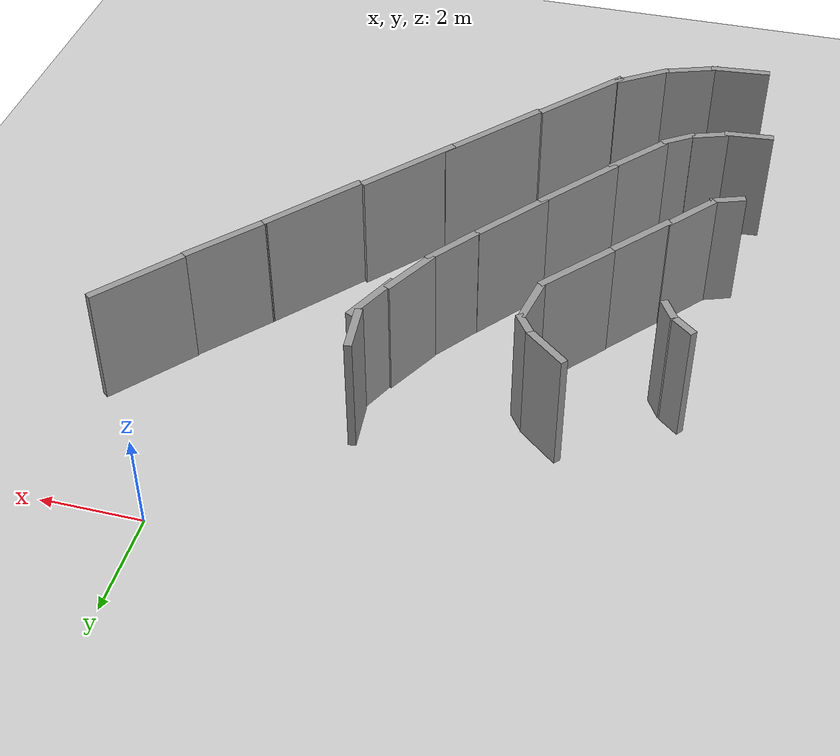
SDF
<sdf version="1.6">
 <world name="default">
  <model name="ground_plane">
   <static>1</static>
   <link name="link">
    <collision name="collision">
     <geometry><plane><normal>0 0 1</normal><size>100 100</size></plane></geometry>
     <surface><friction><ode><mu>100</mu><mu2>50</mu2></ode></friction></surface>
    </collision>
    <visual name="visual">
     <cast_shadows>0</cast_shadows>
     <geometry><plane><normal>0 0 1</normal><size>100 100</size></plane></geometry>
     <material>
      <script><uri>file://media/materials/scripts/gazebo.material</uri><name>Gazebo/Grey</name></script>
     </material>
    </visual>
   </link>
  </model>
  <model name="c-Snail_v3_clone">
   <link name="Wall_14">
    <pose>-5.26527 -5.8787 0 0 0 -0.010393</pose>
    <visual name="Wall_14_Visual">
     <pose>0 0 1.25 0 -0 0</pose>
     <geometry><box><size>2 0.15 2.5</size></box></geometry>
     <material>
      <script><uri>file://media/materials/scripts/gazebo.material</uri><name>Gazebo/Grey</name></script>
      <ambient>1 1 1 1</ambient>
     </material>
     <meta><layer>0</layer></meta>
    </visual>
    <collision name="Wall_14_Collision">
     <pose>0 0 1.25 0 -0 0</pose>
     <geometry><box><size>2 0.15 2.5</size></box></geometry>
     <surface>
      <friction>
       <ode><mu>1</mu><mu2>1</mu2><fdir1>0 0 0</fdir1><slip1>0</slip1><slip2>0</slip2></ode>
       <torsional>
        <coefficient>1</coefficient>
        <patch_radius>0</patch_radius>
        <surface_radius>0</surface_radius>
        <use_patch_radius>1</use_patch_radius>
        <ode><slip>0</slip></ode>
       </torsional>
      </friction>
      <bounce><restitution_coefficient>0</restitution_coefficient><threshold>1e+06</threshold></bounce>
      <contact>
       <collide_without_contact>0</collide_without_contact>
       <collide_without_contact_bitmask>1</collide_without_contact_bitmask>
       <collide_bitmask>1</collide_bitmask>
       <ode>
        <soft_cfm>0</soft_cfm>
        <soft_erp>0.2</soft_erp>
        <kp>1e+13</kp>
        <kd>1</kd>
        <max_vel>0.01</max_vel>
        <min_depth>0</min_depth>
       </ode>
       <bullet>
        <split_impulse>1</split_impulse>
        <split_impulse_penetration_threshold>-0.01</split_impulse_penetration_threshold>
        <soft_cfm>0</soft_cfm>
        <soft_erp>0.2</soft_erp>
        <kp>1e+13</kp>
        <kd>1</kd>
       </bullet>
      </contact>
     </surface>
    </collision>
   </link>
   <link name="Wall_15">
    <pose>-3.40013 -5.89719 0 0 -0 0.01305</pose>
    <visual name="Wall_15_Visual">
     <pose>0 0 1.25 0 -0 0</pose>
     <geometry><box><size>1.77919 0.15 2.5</size></box></geometry>
     <material>
      <script><uri>file://media/materials/scripts/gazebo.material</uri><name>Gazebo/Grey</name></script>
      <ambient>1 1 1 1</ambient>
     </material>
     <meta><layer>0</layer></meta>
    </visual>
    <collision name="Wall_15_Collision">
     <pose>0 0 1.25 0 -0 0</pose>
     <geometry><box><size>1.77919 0.15 2.5</size></box></geometry>
     <surface>
      <friction>
       <ode><mu>1</mu><mu2>1</mu2><fdir1>0 0 0</fdir1><slip1>0</slip1><slip2>0</slip2></ode>
       <torsional>
        <coefficient>1</coefficient>
        <patch_radius>0</patch_radius>
        <surface_radius>0</surface_radius>
        <use_patch_radius>1</use_patch_radius>
        <ode><slip>0</slip></ode>
       </torsional>
      </friction>
      <bounce><restitution_coefficient>0</restitution_coefficient><threshold>1e+06</threshold></bounce>
      <contact>
       <collide_without_contact>0</collide_without_contact>
       <collide_without_contact_bitmask>1</collide_without_contact_bitmask>
       <collide_bitmask>1</collide_bitmask>
       <ode>
        <soft_cfm>0</soft_cfm>
        <soft_erp>0.2</soft_erp>
        <kp>1e+13</kp>
        <kd>1</kd>
        <max_vel>0.01</max_vel>
        <min_depth>0</min_depth>
       </ode>
       <bullet>
        <split_impulse>1</split_impulse>
        <split_impulse_penetration_threshold>-0.01</split_impulse_penetration_threshold>
        <soft_cfm>0</soft_cfm>
        <soft_erp>0.2</soft_erp>
        <kp>1e+13</kp>
        <kd>1</kd>
       </bullet>
      </contact>
     </surface>
    </collision>
   </link>
   <link name="Wall_18">
    <pose>-1.42808 -5.88586 0 0 -0 0</pose>
    <visual name="Wall_18_Visual">
     <pose>0 0 1.25 0 -0 0</pose>
     <geometry><box><size>2.25 0.15 2.5</size></box></geometry>
     <material>
      <script><uri>file://media/materials/scripts/gazebo.material</uri><name>Gazebo/Grey</name></script>
      <ambient>1 1 1 1</ambient>
     </material>
     <meta><layer>0</layer></meta>
    </visual>
    <collision name="Wall_18_Collision">
     <pose>0 0 1.25 0 -0 0</pose>
     <geometry><box><size>2.25 0.15 2.5</size></box></geometry>
     <surface>
      <friction>
       <ode><mu>1</mu><mu2>1</mu2><fdir1>0 0 0</fdir1><slip1>0</slip1><slip2>0</slip2></ode>
       <torsional>
        <coefficient>1</coefficient>
        <patch_radius>0</patch_radius>
        <surface_radius>0</surface_radius>
        <use_patch_radius>1</use_patch_radius>
        <ode><slip>0</slip></ode>
       </torsional>
      </friction>
      <bounce><restitution_coefficient>0</restitution_coefficient><threshold>1e+06</threshold></bounce>
      <contact>
       <collide_without_contact>0</collide_without_contact>
       <collide_without_contact_bitmask>1</collide_without_contact_bitmask>
       <collide_bitmask>1</collide_bitmask>
       <ode>
        <soft_cfm>0</soft_cfm>
        <soft_erp>0.2</soft_erp>
        <kp>1e+13</kp>
        <kd>1</kd>
        <max_vel>0.01</max_vel>
        <min_depth>0</min_depth>
       </ode>
       <bullet>
        <split_impulse>1</split_impulse>
        <split_impulse_penetration_threshold>-0.01</split_impulse_penetration_threshold>
        <soft_cfm>0</soft_cfm>
        <soft_erp>0.2</soft_erp>
        <kp>1e+13</kp>
        <kd>1</kd>
       </bullet>
      </contact>
     </surface>
    </collision>
   </link>
   <link name="Wall_19">
    <pose>0.800174 -5.81597 0 0 -0 0</pose>
    <visual name="Wall_19_Visual">
     <pose>0 0 1.25 0 -0 0</pose>
     <geometry><box><size>2.25 0.15 2.5</size></box></geometry>
     <material>
      <script><uri>file://media/materials/scripts/gazebo.material</uri><name>Gazebo/Grey</name></script>
      <ambient>1 1 1 1</ambient>
     </material>
     <meta><layer>0</layer></meta>
    </visual>
    <collision name="Wall_19_Collision">
     <pose>0 0 1.25 0 -0 0</pose>
     <geometry><box><size>2.25 0.15 2.5</size></box></geometry>
     <surface>
      <friction>
       <ode><mu>1</mu><mu2>1</mu2><fdir1>0 0 0</fdir1><slip1>0</slip1><slip2>0</slip2></ode>
       <torsional>
        <coefficient>1</coefficient>
        <patch_radius>0</patch_radius>
        <surface_radius>0</surface_radius>
        <use_patch_radius>1</use_patch_radius>
        <ode><slip>0</slip></ode>
       </torsional>
      </friction>
      <bounce><restitution_coefficient>0</restitution_coefficient><threshold>1e+06</threshold></bounce>
      <contact>
       <collide_without_contact>0</collide_without_contact>
       <collide_without_contact_bitmask>1</collide_without_contact_bitmask>
       <collide_bitmask>1</collide_bitmask>
       <ode>
        <soft_cfm>0</soft_cfm>
        <soft_erp>0.2</soft_erp>
        <kp>1e+13</kp>
        <kd>1</kd>
        <max_vel>0.01</max_vel>
        <min_depth>0</min_depth>
       </ode>
       <bullet>
        <split_impulse>1</split_impulse>
        <split_impulse_penetration_threshold>-0.01</split_impulse_penetration_threshold>
        <soft_cfm>0</soft_cfm>
        <soft_erp>0.2</soft_erp>
        <kp>1e+13</kp>
        <kd>1</kd>
       </bullet>
      </contact>
     </surface>
    </collision>
   </link>
   <link name="Wall_20">
    <pose>2.90214 -5.80096 0 0 -0 0</pose>
    <visual name="Wall_20_Visual">
     <pose>0 0 1.25 0 -0 0</pose>
     <geometry><box><size>2.5 0.15 2.5</size></box></geometry>
     <material>
      <script><uri>file://media/materials/scripts/gazebo.material</uri><name>Gazebo/Grey</name></script>
      <ambient>1 1 1 1</ambient>
     </material>
     <meta><layer>0</layer></meta>
    </visual>
    <collision name="Wall_20_Collision">
     <pose>0 0 1.25 0 -0 0</pose>
     <geometry><box><size>2.5 0.15 2.5</size></box></geometry>
     <surface>
      <friction>
       <ode><mu>1</mu><mu2>1</mu2><fdir1>0 0 0</fdir1><slip1>0</slip1><slip2>0</slip2></ode>
       <torsional>
        <coefficient>1</coefficient>
        <patch_radius>0</patch_radius>
        <surface_radius>0</surface_radius>
        <use_patch_radius>1</use_patch_radius>
        <ode><slip>0</slip></ode>
       </torsional>
      </friction>
      <bounce><restitution_coefficient>0</restitution_coefficient><threshold>1e+06</threshold></bounce>
      <contact>
       <collide_without_contact>0</collide_without_contact>
       <collide_without_contact_bitmask>1</collide_without_contact_bitmask>
       <collide_bitmask>1</collide_bitmask>
       <ode>
        <soft_cfm>0</soft_cfm>
        <soft_erp>0.2</soft_erp>
        <kp>1e+13</kp>
        <kd>1</kd>
        <max_vel>0.01</max_vel>
        <min_depth>0</min_depth>
       </ode>
       <bullet>
        <split_impulse>1</split_impulse>
        <split_impulse_penetration_threshold>-0.01</split_impulse_penetration_threshold>
        <soft_cfm>0</soft_cfm>
        <soft_erp>0.2</soft_erp>
        <kp>1e+13</kp>
        <kd>1</kd>
       </bullet>
      </contact>
     </surface>
    </collision>
   </link>
   <link name="Wall_21">
    <pose>5.25228 -5.75509 0 0 -0 0</pose>
    <visual name="Wall_21_Visual">
     <pose>0 0 1.25 0 -0 0</pose>
     <geometry><box><size>2.25 0.15 2.5</size></box></geometry>
     <material>
      <script><uri>file://media/materials/scripts/gazebo.material</uri><name>Gazebo/Grey</name></script>
      <ambient>1 1 1 1</ambient>
     </material>
     <meta><layer>0</layer></meta>
    </visual>
    <collision name="Wall_21_Collision">
     <pose>0 0 1.25 0 -0 0</pose>
     <geometry><box><size>2.25 0.15 2.5</size></box></geometry>
     <surface>
      <friction>
       <ode><mu>1</mu><mu2>1</mu2><fdir1>0 0 0</fdir1><slip1>0</slip1><slip2>0</slip2></ode>
       <torsional>
        <coefficient>1</coefficient>
        <patch_radius>0</patch_radius>
        <surface_radius>0</surface_radius>
        <use_patch_radius>1</use_patch_radius>
        <ode><slip>0</slip></ode>
       </torsional>
      </friction>
      <bounce><restitution_coefficient>0</restitution_coefficient><threshold>1e+06</threshold></bounce>
      <contact>
       <collide_without_contact>0</collide_without_contact>
       <collide_without_contact_bitmask>1</collide_without_contact_bitmask>
       <collide_bitmask>1</collide_bitmask>
       <ode>
        <soft_cfm>0</soft_cfm>
        <soft_erp>0.2</soft_erp>
        <kp>1e+13</kp>
        <kd>1</kd>
        <max_vel>0.01</max_vel>
        <min_depth>0</min_depth>
       </ode>
       <bullet>
        <split_impulse>1</split_impulse>
        <split_impulse_penetration_threshold>-0.01</split_impulse_penetration_threshold>
        <soft_cfm>0</soft_cfm>
        <soft_erp>0.2</soft_erp>
        <kp>1e+13</kp>
        <kd>1</kd>
       </bullet>
      </contact>
     </surface>
    </collision>
   </link>
   <link name="Wall_22">
    <pose>6.78859 -5.56286 0 0 -0 0.261799</pose>
    <visual name="Wall_22_Visual">
     <pose>0 0 1.25 0 -0 0</pose>
     <geometry><box><size>1.25 0.15 2.5</size></box></geometry>
     <material>
      <script><uri>file://media/materials/scripts/gazebo.material</uri><name>Gazebo/Grey</name></script>
      <ambient>1 1 1 1</ambient>
     </material>
     <meta><layer>0</layer></meta>
    </visual>
    <collision name="Wall_22_Collision">
     <pose>0 0 1.25 0 -0 0</pose>
     <geometry><box><size>1.25 0.15 2.5</size></box></geometry>
     <surface>
      <friction>
       <ode><mu>1</mu><mu2>1</mu2><fdir1>0 0 0</fdir1><slip1>0</slip1><slip2>0</slip2></ode>
       <torsional>
        <coefficient>1</coefficient>
        <patch_radius>0</patch_radius>
        <surface_radius>0</surface_radius>
        <use_patch_radius>1</use_patch_radius>
        <ode><slip>0</slip></ode>
       </torsional>
      </friction>
      <bounce><restitution_coefficient>0</restitution_coefficient><threshold>1e+06</threshold></bounce>
      <contact>
       <collide_without_contact>0</collide_without_contact>
       <collide_without_contact_bitmask>1</collide_without_contact_bitmask>
       <collide_bitmask>1</collide_bitmask>
       <ode>
        <soft_cfm>0</soft_cfm>
        <soft_erp>0.2</soft_erp>
        <kp>1e+13</kp>
        <kd>1</kd>
        <max_vel>0.01</max_vel>
        <min_depth>0</min_depth>
       </ode>
       <bullet>
        <split_impulse>1</split_impulse>
        <split_impulse_penetration_threshold>-0.01</split_impulse_penetration_threshold>
        <soft_cfm>0</soft_cfm>
        <soft_erp>0.2</soft_erp>
        <kp>1e+13</kp>
        <kd>1</kd>
       </bullet>
      </contact>
     </surface>
    </collision>
   </link>
   <link name="Wall_23">
    <pose>7.79617 -5.14551 0 0 -0 0.523599</pose>
    <visual name="Wall_23_Visual">
     <pose>0 0 1.25 0 -0 0</pose>
     <geometry><box><size>1.25 0.15 2.5</size></box></geometry>
     <material>
      <script><uri>file://media/materials/scripts/gazebo.material</uri><name>Gazebo/Grey</name></script>
      <ambient>1 1 1 1</ambient>
     </material>
     <meta><layer>0</layer></meta>
    </visual>
    <collision name="Wall_23_Collision">
     <pose>0 0 1.25 0 -0 0</pose>
     <geometry><box><size>1.25 0.15 2.5</size></box></geometry>
     <surface>
      <friction>
       <ode><mu>1</mu><mu2>1</mu2><fdir1>0 0 0</fdir1><slip1>0</slip1><slip2>0</slip2></ode>
       <torsional>
        <coefficient>1</coefficient>
        <patch_radius>0</patch_radius>
        <surface_radius>0</surface_radius>
        <use_patch_radius>1</use_patch_radius>
        <ode><slip>0</slip></ode>
       </torsional>
      </friction>
      <bounce><restitution_coefficient>0</restitution_coefficient><threshold>1e+06</threshold></bounce>
      <contact>
       <collide_without_contact>0</collide_without_contact>
       <collide_without_contact_bitmask>1</collide_without_contact_bitmask>
       <collide_bitmask>1</collide_bitmask>
       <ode>
        <soft_cfm>0</soft_cfm>
        <soft_erp>0.2</soft_erp>
        <kp>1e+13</kp>
        <kd>1</kd>
        <max_vel>0.01</max_vel>
        <min_depth>0</min_depth>
       </ode>
       <bullet>
        <split_impulse>1</split_impulse>
        <split_impulse_penetration_threshold>-0.01</split_impulse_penetration_threshold>
        <soft_cfm>0</soft_cfm>
        <soft_erp>0.2</soft_erp>
        <kp>1e+13</kp>
        <kd>1</kd>
       </bullet>
      </contact>
     </surface>
    </collision>
   </link>
   <link name="Wall_24">
    <pose>8.66139 -4.4816 0 0 -0 0.785398</pose>
    <visual name="Wall_24_Visual">
     <pose>0 0 1.25 0 -0 0</pose>
     <geometry><box><size>1.25 0.15 2.5</size></box></geometry>
     <material>
      <script><uri>file://media/materials/scripts/gazebo.material</uri><name>Gazebo/Grey</name></script>
      <ambient>1 1 1 1</ambient>
     </material>
     <meta><layer>0</layer></meta>
    </visual>
    <collision name="Wall_24_Collision">
     <pose>0 0 1.25 0 -0 0</pose>
     <geometry><box><size>1.25 0.15 2.5</size></box></geometry>
     <surface>
      <friction>
       <ode><mu>1</mu><mu2>1</mu2><fdir1>0 0 0</fdir1><slip1>0</slip1><slip2>0</slip2></ode>
       <torsional>
        <coefficient>1</coefficient>
        <patch_radius>0</patch_radius>
        <surface_radius>0</surface_radius>
        <use_patch_radius>1</use_patch_radius>
        <ode><slip>0</slip></ode>
       </torsional>
      </friction>
      <bounce><restitution_coefficient>0</restitution_coefficient><threshold>1e+06</threshold></bounce>
      <contact>
       <collide_without_contact>0</collide_without_contact>
       <collide_without_contact_bitmask>1</collide_without_contact_bitmask>
       <collide_bitmask>1</collide_bitmask>
       <ode>
        <soft_cfm>0</soft_cfm>
        <soft_erp>0.2</soft_erp>
        <kp>1e+13</kp>
        <kd>1</kd>
        <max_vel>0.01</max_vel>
        <min_depth>0</min_depth>
       </ode>
       <bullet>
        <split_impulse>1</split_impulse>
        <split_impulse_penetration_threshold>-0.01</split_impulse_penetration_threshold>
        <soft_cfm>0</soft_cfm>
        <soft_erp>0.2</soft_erp>
        <kp>1e+13</kp>
        <kd>1</kd>
       </bullet>
      </contact>
     </surface>
    </collision>
   </link>
   <link name="Wall_43">
    <pose>-2.78966 -2.37241 0 0 0 -0.785398</pose>
    <visual name="Wall_43_Visual">
     <pose>0 0 1.25 0 -0 0</pose>
     <geometry><box><size>1 0.15 2.5</size></box></geometry>
     <material>
      <script><uri>file://media/materials/scripts/gazebo.material</uri><name>Gazebo/Grey</name></script>
      <ambient>1 1 1 1</ambient>
     </material>
     <meta><layer>0</layer></meta>
    </visual>
    <collision name="Wall_43_Collision">
     <pose>0 0 1.25 0 -0 0</pose>
     <geometry><box><size>1 0.15 2.5</size></box></geometry>
     <surface>
      <friction>
       <ode><mu>1</mu><mu2>1</mu2><fdir1>0 0 0</fdir1><slip1>0</slip1><slip2>0</slip2></ode>
       <torsional>
        <coefficient>1</coefficient>
        <patch_radius>0</patch_radius>
        <surface_radius>0</surface_radius>
        <use_patch_radius>1</use_patch_radius>
        <ode><slip>0</slip></ode>
       </torsional>
      </friction>
      <bounce><restitution_coefficient>0</restitution_coefficient><threshold>1e+06</threshold></bounce>
      <contact>
       <collide_without_contact>0</collide_without_contact>
       <collide_without_contact_bitmask>1</collide_without_contact_bitmask>
       <collide_bitmask>1</collide_bitmask>
       <ode>
        <soft_cfm>0</soft_cfm>
        <soft_erp>0.2</soft_erp>
        <kp>1e+13</kp>
        <kd>1</kd>
        <max_vel>0.01</max_vel>
        <min_depth>0</min_depth>
       </ode>
       <bullet>
        <split_impulse>1</split_impulse>
        <split_impulse_penetration_threshold>-0.01</split_impulse_penetration_threshold>
        <soft_cfm>0</soft_cfm>
        <soft_erp>0.2</soft_erp>
        <kp>1e+13</kp>
        <kd>1</kd>
       </bullet>
      </contact>
     </surface>
    </collision>
   </link>
   <link name="Wall_44">
    <pose>-2.07399 -2.86351 0 0 0 -0.261799</pose>
    <visual name="Wall_44_Visual">
     <pose>0 0 1.25 0 -0 0</pose>
     <geometry><box><size>1.25 0.15 2.5</size></box></geometry>
     <material>
      <script><uri>file://media/materials/scripts/gazebo.material</uri><name>Gazebo/Grey</name></script>
      <ambient>1 1 1 1</ambient>
     </material>
     <meta><layer>0</layer></meta>
    </visual>
    <collision name="Wall_44_Collision">
     <pose>0 0 1.25 0 -0 0</pose>
     <geometry><box><size>1.25 0.15 2.5</size></box></geometry>
     <surface>
      <friction>
       <ode><mu>1</mu><mu2>1</mu2><fdir1>0 0 0</fdir1><slip1>0</slip1><slip2>0</slip2></ode>
       <torsional>
        <coefficient>1</coefficient>
        <patch_radius>0</patch_radius>
        <surface_radius>0</surface_radius>
        <use_patch_radius>1</use_patch_radius>
        <ode><slip>0</slip></ode>
       </torsional>
      </friction>
      <bounce><restitution_coefficient>0</restitution_coefficient><threshold>1e+06</threshold></bounce>
      <contact>
       <collide_without_contact>0</collide_without_contact>
       <collide_without_contact_bitmask>1</collide_without_contact_bitmask>
       <collide_bitmask>1</collide_bitmask>
       <ode>
        <soft_cfm>0</soft_cfm>
        <soft_erp>0.2</soft_erp>
        <kp>1e+13</kp>
        <kd>1</kd>
        <max_vel>0.01</max_vel>
        <min_depth>0</min_depth>
       </ode>
       <bullet>
        <split_impulse>1</split_impulse>
        <split_impulse_penetration_threshold>-0.01</split_impulse_penetration_threshold>
        <soft_cfm>0</soft_cfm>
        <soft_erp>0.2</soft_erp>
        <kp>1e+13</kp>
        <kd>1</kd>
       </bullet>
      </contact>
     </surface>
    </collision>
   </link>
   <link name="Wall_45">
    <pose>-1.09897 -3.05219 0 0 0 -0.205287</pose>
    <visual name="Wall_45_Visual">
     <pose>0 0 1.25 0 -0 0</pose>
     <geometry><box><size>1.25 0.15 2.5</size></box></geometry>
     <material>
      <script><uri>file://media/materials/scripts/gazebo.material</uri><name>Gazebo/Grey</name></script>
      <ambient>1 1 1 1</ambient>
     </material>
     <meta><layer>0</layer></meta>
    </visual>
    <collision name="Wall_45_Collision">
     <pose>0 0 1.25 0 -0 0</pose>
     <geometry><box><size>1.25 0.15 2.5</size></box></geometry>
     <surface>
      <friction>
       <ode><mu>1</mu><mu2>1</mu2><fdir1>0 0 0</fdir1><slip1>0</slip1><slip2>0</slip2></ode>
       <torsional>
        <coefficient>1</coefficient>
        <patch_radius>0</patch_radius>
        <surface_radius>0</surface_radius>
        <use_patch_radius>1</use_patch_radius>
        <ode><slip>0</slip></ode>
       </torsional>
      </friction>
      <bounce><restitution_coefficient>0</restitution_coefficient><threshold>1e+06</threshold></bounce>
      <contact>
       <collide_without_contact>0</collide_without_contact>
       <collide_without_contact_bitmask>1</collide_without_contact_bitmask>
       <collide_bitmask>1</collide_bitmask>
       <ode>
        <soft_cfm>0</soft_cfm>
        <soft_erp>0.2</soft_erp>
        <kp>1e+13</kp>
        <kd>1</kd>
        <max_vel>0.01</max_vel>
        <min_depth>0</min_depth>
       </ode>
       <bullet>
        <split_impulse>1</split_impulse>
        <split_impulse_penetration_threshold>-0.01</split_impulse_penetration_threshold>
        <soft_cfm>0</soft_cfm>
        <soft_erp>0.2</soft_erp>
        <kp>1e+13</kp>
        <kd>1</kd>
       </bullet>
      </contact>
     </surface>
    </collision>
   </link>
   <link name="Wall_46">
    <pose>0.001242 -3.22352 -0 0 0 -0.065231</pose>
    <visual name="Wall_46_Visual">
     <pose>0 0 1.25 0 -0 0</pose>
     <geometry><box><size>1.25 0.15 2.5</size></box></geometry>
     <material>
      <script><uri>file://media/materials/scripts/gazebo.material</uri><name>Gazebo/Grey</name></script>
      <ambient>1 1 1 1</ambient>
     </material>
     <meta><layer>0</layer></meta>
    </visual>
    <collision name="Wall_46_Collision">
     <pose>0 0 1.25 0 -0 0</pose>
     <geometry><box><size>1.25 0.15 2.5</size></box></geometry>
     <surface>
      <friction>
       <ode><mu>1</mu><mu2>1</mu2><fdir1>0 0 0</fdir1><slip1>0</slip1><slip2>0</slip2></ode>
       <torsional>
        <coefficient>1</coefficient>
        <patch_radius>0</patch_radius>
        <surface_radius>0</surface_radius>
        <use_patch_radius>1</use_patch_radius>
        <ode><slip>0</slip></ode>
       </torsional>
      </friction>
      <bounce><restitution_coefficient>0</restitution_coefficient><threshold>1e+06</threshold></bounce>
      <contact>
       <collide_without_contact>0</collide_without_contact>
       <collide_without_contact_bitmask>1</collide_without_contact_bitmask>
       <collide_bitmask>1</collide_bitmask>
       <ode>
        <soft_cfm>0</soft_cfm>
        <soft_erp>0.2</soft_erp>
        <kp>1e+13</kp>
        <kd>1</kd>
        <max_vel>0.01</max_vel>
        <min_depth>0</min_depth>
       </ode>
       <bullet>
        <split_impulse>1</split_impulse>
        <split_impulse_penetration_threshold>-0.01</split_impulse_penetration_threshold>
        <soft_cfm>0</soft_cfm>
        <soft_erp>0.2</soft_erp>
        <kp>1e+13</kp>
        <kd>1</kd>
       </bullet>
      </contact>
     </surface>
    </collision>
   </link>
   <link name="Wall_47">
    <pose>1.4692 -3.29142 0 0 0 -0.040966</pose>
    <visual name="Wall_47_Visual">
     <pose>0 0 1.25 0 -0 0</pose>
     <geometry><box><size>1.75 0.15 2.5</size></box></geometry>
     <material>
      <script><uri>file://media/materials/scripts/gazebo.material</uri><name>Gazebo/Grey</name></script>
      <ambient>1 1 1 1</ambient>
     </material>
     <meta><layer>0</layer></meta>
    </visual>
    <collision name="Wall_47_Collision">
     <pose>0 0 1.25 0 -0 0</pose>
     <geometry><box><size>1.75 0.15 2.5</size></box></geometry>
     <surface>
      <friction>
       <ode><mu>1</mu><mu2>1</mu2><fdir1>0 0 0</fdir1><slip1>0</slip1><slip2>0</slip2></ode>
       <torsional>
        <coefficient>1</coefficient>
        <patch_radius>0</patch_radius>
        <surface_radius>0</surface_radius>
        <use_patch_radius>1</use_patch_radius>
        <ode><slip>0</slip></ode>
       </torsional>
      </friction>
      <bounce><restitution_coefficient>0</restitution_coefficient><threshold>1e+06</threshold></bounce>
      <contact>
       <collide_without_contact>0</collide_without_contact>
       <collide_without_contact_bitmask>1</collide_without_contact_bitmask>
       <collide_bitmask>1</collide_bitmask>
       <ode>
        <soft_cfm>0</soft_cfm>
        <soft_erp>0.2</soft_erp>
        <kp>1e+13</kp>
        <kd>1</kd>
        <max_vel>0.01</max_vel>
        <min_depth>0</min_depth>
       </ode>
       <bullet>
        <split_impulse>1</split_impulse>
        <split_impulse_penetration_threshold>-0.01</split_impulse_penetration_threshold>
        <soft_cfm>0</soft_cfm>
        <soft_erp>0.2</soft_erp>
        <kp>1e+13</kp>
        <kd>1</kd>
       </bullet>
      </contact>
     </surface>
    </collision>
   </link>
   <link name="Wall_48">
    <pose>3.18497 -3.36606 0 0 0 -0.02609</pose>
    <visual name="Wall_48_Visual">
     <pose>0 0 1.25 0 -0 0</pose>
     <geometry><box><size>2 0.15 2.5</size></box></geometry>
     <material>
      <script><uri>file://media/materials/scripts/gazebo.material</uri><name>Gazebo/Grey</name></script>
      <ambient>1 1 1 1</ambient>
     </material>
     <meta><layer>0</layer></meta>
    </visual>
    <collision name="Wall_48_Collision">
     <pose>0 0 1.25 0 -0 0</pose>
     <geometry><box><size>2 0.15 2.5</size></box></geometry>
     <surface>
      <friction>
       <ode><mu>1</mu><mu2>1</mu2><fdir1>0 0 0</fdir1><slip1>0</slip1><slip2>0</slip2></ode>
       <torsional>
        <coefficient>1</coefficient>
        <patch_radius>0</patch_radius>
        <surface_radius>0</surface_radius>
        <use_patch_radius>1</use_patch_radius>
        <ode><slip>0</slip></ode>
       </torsional>
      </friction>
      <bounce><restitution_coefficient>0</restitution_coefficient><threshold>1e+06</threshold></bounce>
      <contact>
       <collide_without_contact>0</collide_without_contact>
       <collide_without_contact_bitmask>1</collide_without_contact_bitmask>
       <collide_bitmask>1</collide_bitmask>
       <ode>
        <soft_cfm>0</soft_cfm>
        <soft_erp>0.2</soft_erp>
        <kp>1e+13</kp>
        <kd>1</kd>
        <max_vel>0.01</max_vel>
        <min_depth>0</min_depth>
       </ode>
       <bullet>
        <split_impulse>1</split_impulse>
        <split_impulse_penetration_threshold>-0.01</split_impulse_penetration_threshold>
        <soft_cfm>0</soft_cfm>
        <soft_erp>0.2</soft_erp>
        <kp>1e+13</kp>
        <kd>1</kd>
       </bullet>
      </contact>
     </surface>
    </collision>
   </link>
   <link name="Wall_49">
    <pose>4.78497 -3.4097 0 0 -0 0</pose>
    <visual name="Wall_49_Visual">
     <pose>0 0 1.25 0 -0 0</pose>
     <geometry><box><size>1.5 0.15 2.5</size></box></geometry>
     <material>
      <script><uri>file://media/materials/scripts/gazebo.material</uri><name>Gazebo/Grey</name></script>
      <ambient>1 1 1 1</ambient>
     </material>
     <meta><layer>0</layer></meta>
    </visual>
    <collision name="Wall_49_Collision">
     <pose>0 0 1.25 0 -0 0</pose>
     <geometry><box><size>1.5 0.15 2.5</size></box></geometry>
     <surface>
      <friction>
       <ode><mu>1</mu><mu2>1</mu2><fdir1>0 0 0</fdir1><slip1>0</slip1><slip2>0</slip2></ode>
       <torsional>
        <coefficient>1</coefficient>
        <patch_radius>0</patch_radius>
        <surface_radius>0</surface_radius>
        <use_patch_radius>1</use_patch_radius>
        <ode><slip>0</slip></ode>
       </torsional>
      </friction>
      <bounce><restitution_coefficient>0</restitution_coefficient><threshold>1e+06</threshold></bounce>
      <contact>
       <collide_without_contact>0</collide_without_contact>
       <collide_without_contact_bitmask>1</collide_without_contact_bitmask>
       <collide_bitmask>1</collide_bitmask>
       <ode>
        <soft_cfm>0</soft_cfm>
        <soft_erp>0.2</soft_erp>
        <kp>1e+13</kp>
        <kd>1</kd>
        <max_vel>0.01</max_vel>
        <min_depth>0</min_depth>
       </ode>
       <bullet>
        <split_impulse>1</split_impulse>
        <split_impulse_penetration_threshold>-0.01</split_impulse_penetration_threshold>
        <soft_cfm>0</soft_cfm>
        <soft_erp>0.2</soft_erp>
        <kp>1e+13</kp>
        <kd>1</kd>
       </bullet>
      </contact>
     </surface>
    </collision>
   </link>
   <link name="Wall_50">
    <pose>5.83118 -3.35199 0 0 -0 0.261799</pose>
    <visual name="Wall_50_Visual">
     <pose>0 0 1.25 0 -0 0</pose>
     <geometry><box><size>0.75 0.15 2.5</size></box></geometry>
     <material>
      <script><uri>file://media/materials/scripts/gazebo.material</uri><name>Gazebo/Grey</name></script>
      <ambient>1 1 1 1</ambient>
     </material>
     <meta><layer>0</layer></meta>
    </visual>
    <collision name="Wall_50_Collision">
     <pose>0 0 1.25 0 -0 0</pose>
     <geometry><box><size>0.75 0.15 2.5</size></box></geometry>
     <surface>
      <friction>
       <ode><mu>1</mu><mu2>1</mu2><fdir1>0 0 0</fdir1><slip1>0</slip1><slip2>0</slip2></ode>
       <torsional>
        <coefficient>1</coefficient>
        <patch_radius>0</patch_radius>
        <surface_radius>0</surface_radius>
        <use_patch_radius>1</use_patch_radius>
        <ode><slip>0</slip></ode>
       </torsional>
      </friction>
      <bounce><restitution_coefficient>0</restitution_coefficient><threshold>1e+06</threshold></bounce>
      <contact>
       <collide_without_contact>0</collide_without_contact>
       <collide_without_contact_bitmask>1</collide_without_contact_bitmask>
       <collide_bitmask>1</collide_bitmask>
       <ode>
        <soft_cfm>0</soft_cfm>
        <soft_erp>0.2</soft_erp>
        <kp>1e+13</kp>
        <kd>1</kd>
        <max_vel>0.01</max_vel>
        <min_depth>0</min_depth>
       </ode>
       <bullet>
        <split_impulse>1</split_impulse>
        <split_impulse_penetration_threshold>-0.01</split_impulse_penetration_threshold>
        <soft_cfm>0</soft_cfm>
        <soft_erp>0.2</soft_erp>
        <kp>1e+13</kp>
        <kd>1</kd>
       </bullet>
      </contact>
     </surface>
    </collision>
   </link>
   <link name="Wall_51">
    <pose>6.44534 -3.07335 0 0 -0 0.523599</pose>
    <visual name="Wall_51_Visual">
     <pose>0 0 1.25 0 -0 0</pose>
     <geometry><box><size>0.75 0.15 2.5</size></box></geometry>
     <material>
      <script><uri>file://media/materials/scripts/gazebo.material</uri><name>Gazebo/Grey</name></script>
      <ambient>1 1 1 1</ambient>
     </material>
     <meta><layer>0</layer></meta>
    </visual>
    <collision name="Wall_51_Collision">
     <pose>0 0 1.25 0 -0 0</pose>
     <geometry><box><size>0.75 0.15 2.5</size></box></geometry>
     <surface>
      <friction>
       <ode><mu>1</mu><mu2>1</mu2><fdir1>0 0 0</fdir1><slip1>0</slip1><slip2>0</slip2></ode>
       <torsional>
        <coefficient>1</coefficient>
        <patch_radius>0</patch_radius>
        <surface_radius>0</surface_radius>
        <use_patch_radius>1</use_patch_radius>
        <ode><slip>0</slip></ode>
       </torsional>
      </friction>
      <bounce><restitution_coefficient>0</restitution_coefficient><threshold>1e+06</threshold></bounce>
      <contact>
       <collide_without_contact>0</collide_without_contact>
       <collide_without_contact_bitmask>1</collide_without_contact_bitmask>
       <collide_bitmask>1</collide_bitmask>
       <ode>
        <soft_cfm>0</soft_cfm>
        <soft_erp>0.2</soft_erp>
        <kp>1e+13</kp>
        <kd>1</kd>
        <max_vel>0.01</max_vel>
        <min_depth>0</min_depth>
       </ode>
       <bullet>
        <split_impulse>1</split_impulse>
        <split_impulse_penetration_threshold>-0.01</split_impulse_penetration_threshold>
        <soft_cfm>0</soft_cfm>
        <soft_erp>0.2</soft_erp>
        <kp>1e+13</kp>
        <kd>1</kd>
       </bullet>
      </contact>
     </surface>
    </collision>
   </link>
   <link name="Wall_52">
    <pose>7.08455 -2.59483 0 0 -0 0.785398</pose>
    <visual name="Wall_52_Visual">
     <pose>0 0 1.25 0 -0 0</pose>
     <geometry><box><size>1 0.15 2.5</size></box></geometry>
     <material>
      <script><uri>file://media/materials/scripts/gazebo.material</uri><name>Gazebo/Grey</name></script>
      <ambient>1 1 1 1</ambient>
     </material>
     <meta><layer>0</layer></meta>
    </visual>
    <collision name="Wall_52_Collision">
     <pose>0 0 1.25 0 -0 0</pose>
     <geometry><box><size>1 0.15 2.5</size></box></geometry>
     <surface>
      <friction>
       <ode><mu>1</mu><mu2>1</mu2><fdir1>0 0 0</fdir1><slip1>0</slip1><slip2>0</slip2></ode>
       <torsional>
        <coefficient>1</coefficient>
        <patch_radius>0</patch_radius>
        <surface_radius>0</surface_radius>
        <use_patch_radius>1</use_patch_radius>
        <ode><slip>0</slip></ode>
       </torsional>
      </friction>
      <bounce><restitution_coefficient>0</restitution_coefficient><threshold>1e+06</threshold></bounce>
      <contact>
       <collide_without_contact>0</collide_without_contact>
       <collide_without_contact_bitmask>1</collide_without_contact_bitmask>
       <collide_bitmask>1</collide_bitmask>
       <ode>
        <soft_cfm>0</soft_cfm>
        <soft_erp>0.2</soft_erp>
        <kp>1e+13</kp>
        <kd>1</kd>
        <max_vel>0.01</max_vel>
        <min_depth>0</min_depth>
       </ode>
       <bullet>
        <split_impulse>1</split_impulse>
        <split_impulse_penetration_threshold>-0.01</split_impulse_penetration_threshold>
        <soft_cfm>0</soft_cfm>
        <soft_erp>0.2</soft_erp>
        <kp>1e+13</kp>
        <kd>1</kd>
       </bullet>
      </contact>
     </surface>
    </collision>
   </link>
   <link name="Wall_67">
    <pose>-0.316141 0.005293 0 0 0 -1.5708</pose>
    <visual name="Wall_67_Visual">
     <pose>0 0 1.25 0 -0 0</pose>
     <geometry><box><size>1 0.15 2.5</size></box></geometry>
     <material>
      <script><uri>file://media/materials/scripts/gazebo.material</uri><name>Gazebo/Grey</name></script>
      <ambient>1 1 1 1</ambient>
     </material>
     <meta><layer>0</layer></meta>
    </visual>
    <collision name="Wall_67_Collision">
     <pose>0 0 1.25 0 -0 0</pose>
     <geometry><box><size>1 0.15 2.5</size></box></geometry>
     <surface>
      <friction>
       <ode><mu>1</mu><mu2>1</mu2><fdir1>0 0 0</fdir1><slip1>0</slip1><slip2>0</slip2></ode>
       <torsional>
        <coefficient>1</coefficient>
        <patch_radius>0</patch_radius>
        <surface_radius>0</surface_radius>
        <use_patch_radius>1</use_patch_radius>
        <ode><slip>0</slip></ode>
       </torsional>
      </friction>
      <bounce><restitution_coefficient>0</restitution_coefficient><threshold>1e+06</threshold></bounce>
      <contact>
       <collide_without_contact>0</collide_without_contact>
       <collide_without_contact_bitmask>1</collide_without_contact_bitmask>
       <collide_bitmask>1</collide_bitmask>
       <ode>
        <soft_cfm>0</soft_cfm>
        <soft_erp>0.2</soft_erp>
        <kp>1e+13</kp>
        <kd>1</kd>
        <max_vel>0.01</max_vel>
        <min_depth>0</min_depth>
       </ode>
       <bullet>
        <split_impulse>1</split_impulse>
        <split_impulse_penetration_threshold>-0.01</split_impulse_penetration_threshold>
        <soft_cfm>0</soft_cfm>
        <soft_erp>0.2</soft_erp>
        <kp>1e+13</kp>
        <kd>1</kd>
       </bullet>
      </contact>
     </surface>
    </collision>
   </link>
   <link name="Wall_68">
    <pose>-0.252403 -0.700153 0 0 0 -1.309</pose>
    <visual name="Wall_68_Visual">
     <pose>0 0 1.25 0 -0 0</pose>
     <geometry><box><size>0.5 0.15 2.5</size></box></geometry>
     <material>
      <script><uri>file://media/materials/scripts/gazebo.material</uri><name>Gazebo/Grey</name></script>
      <ambient>1 1 1 1</ambient>
     </material>
     <meta><layer>0</layer></meta>
    </visual>
    <collision name="Wall_68_Collision">
     <pose>0 0 1.25 0 -0 0</pose>
     <geometry><box><size>0.5 0.15 2.5</size></box></geometry>
     <surface>
      <friction>
       <ode><mu>1</mu><mu2>1</mu2><fdir1>0 0 0</fdir1><slip1>0</slip1><slip2>0</slip2></ode>
       <torsional>
        <coefficient>1</coefficient>
        <patch_radius>0</patch_radius>
        <surface_radius>0</surface_radius>
        <use_patch_radius>1</use_patch_radius>
        <ode><slip>0</slip></ode>
       </torsional>
      </friction>
      <bounce><restitution_coefficient>0</restitution_coefficient><threshold>1e+06</threshold></bounce>
      <contact>
       <collide_without_contact>0</collide_without_contact>
       <collide_without_contact_bitmask>1</collide_without_contact_bitmask>
       <collide_bitmask>1</collide_bitmask>
       <ode>
        <soft_cfm>0</soft_cfm>
        <soft_erp>0.2</soft_erp>
        <kp>1e+13</kp>
        <kd>1</kd>
        <max_vel>0.01</max_vel>
        <min_depth>0</min_depth>
       </ode>
       <bullet>
        <split_impulse>1</split_impulse>
        <split_impulse_penetration_threshold>-0.01</split_impulse_penetration_threshold>
        <soft_cfm>0</soft_cfm>
        <soft_erp>0.2</soft_erp>
        <kp>1e+13</kp>
        <kd>1</kd>
       </bullet>
      </contact>
     </surface>
    </collision>
   </link>
   <link name="Wall_69">
    <pose>0.240975 -1.11854 0 0 0 -0.523599</pose>
    <visual name="Wall_69_Visual">
     <pose>0 0 1.25 0 -0 0</pose>
     <geometry><box><size>1 0.15 2.5</size></box></geometry>
     <material>
      <script><uri>file://media/materials/scripts/gazebo.material</uri><name>Gazebo/Grey</name></script>
      <ambient>1 1 1 1</ambient>
     </material>
     <meta><layer>0</layer></meta>
    </visual>
    <collision name="Wall_69_Collision">
     <pose>0 0 1.25 0 -0 0</pose>
     <geometry><box><size>1 0.15 2.5</size></box></geometry>
     <surface>
      <friction>
       <ode><mu>1</mu><mu2>1</mu2><fdir1>0 0 0</fdir1><slip1>0</slip1><slip2>0</slip2></ode>
       <torsional>
        <coefficient>1</coefficient>
        <patch_radius>0</patch_radius>
        <surface_radius>0</surface_radius>
        <use_patch_radius>1</use_patch_radius>
        <ode><slip>0</slip></ode>
       </torsional>
      </friction>
      <bounce><restitution_coefficient>0</restitution_coefficient><threshold>1e+06</threshold></bounce>
      <contact>
       <collide_without_contact>0</collide_without_contact>
       <collide_without_contact_bitmask>1</collide_without_contact_bitmask>
       <collide_bitmask>1</collide_bitmask>
       <ode>
        <soft_cfm>0</soft_cfm>
        <soft_erp>0.2</soft_erp>
        <kp>1e+13</kp>
        <kd>1</kd>
        <max_vel>0.01</max_vel>
        <min_depth>0</min_depth>
       </ode>
       <bullet>
        <split_impulse>1</split_impulse>
        <split_impulse_penetration_threshold>-0.01</split_impulse_penetration_threshold>
        <soft_cfm>0</soft_cfm>
        <soft_erp>0.2</soft_erp>
        <kp>1e+13</kp>
        <kd>1</kd>
       </bullet>
      </contact>
     </surface>
    </collision>
   </link>
   <link name="Wall_70">
    <pose>1.50322 -1.37769 0 0 -0 0</pose>
    <visual name="Wall_70_Visual">
     <pose>0 0 1.25 0 -0 0</pose>
     <geometry><box><size>1.75 0.15 2.5</size></box></geometry>
     <material>
      <script><uri>file://media/materials/scripts/gazebo.material</uri><name>Gazebo/Grey</name></script>
      <ambient>1 1 1 1</ambient>
     </material>
     <meta><layer>0</layer></meta>
    </visual>
    <collision name="Wall_70_Collision">
     <pose>0 0 1.25 0 -0 0</pose>
     <geometry><box><size>1.75 0.15 2.5</size></box></geometry>
     <surface>
      <friction>
       <ode><mu>1</mu><mu2>1</mu2><fdir1>0 0 0</fdir1><slip1>0</slip1><slip2>0</slip2></ode>
       <torsional>
        <coefficient>1</coefficient>
        <patch_radius>0</patch_radius>
        <surface_radius>0</surface_radius>
        <use_patch_radius>1</use_patch_radius>
        <ode><slip>0</slip></ode>
       </torsional>
      </friction>
      <bounce><restitution_coefficient>0</restitution_coefficient><threshold>1e+06</threshold></bounce>
      <contact>
       <collide_without_contact>0</collide_without_contact>
       <collide_without_contact_bitmask>1</collide_without_contact_bitmask>
       <collide_bitmask>1</collide_bitmask>
       <ode>
        <soft_cfm>0</soft_cfm>
        <soft_erp>0.2</soft_erp>
        <kp>1e+13</kp>
        <kd>1</kd>
        <max_vel>0.01</max_vel>
        <min_depth>0</min_depth>
       </ode>
       <bullet>
        <split_impulse>1</split_impulse>
        <split_impulse_penetration_threshold>-0.01</split_impulse_penetration_threshold>
        <soft_cfm>0</soft_cfm>
        <soft_erp>0.2</soft_erp>
        <kp>1e+13</kp>
        <kd>1</kd>
       </bullet>
      </contact>
     </surface>
    </collision>
   </link>
   <link name="Wall_71">
    <pose>3.08758 -1.38978 0 0 -0 0</pose>
    <visual name="Wall_71_Visual">
     <pose>0 0 1.25 0 -0 0</pose>
     <geometry><box><size>1.5 0.15 2.5</size></box></geometry>
     <material>
      <script><uri>file://media/materials/scripts/gazebo.material</uri><name>Gazebo/Grey</name></script>
      <ambient>1 1 1 1</ambient>
     </material>
     <meta><layer>0</layer></meta>
    </visual>
    <collision name="Wall_71_Collision">
     <pose>0 0 1.25 0 -0 0</pose>
     <geometry><box><size>1.5 0.15 2.5</size></box></geometry>
     <surface>
      <friction>
       <ode><mu>1</mu><mu2>1</mu2><fdir1>0 0 0</fdir1><slip1>0</slip1><slip2>0</slip2></ode>
       <torsional>
        <coefficient>1</coefficient>
        <patch_radius>0</patch_radius>
        <surface_radius>0</surface_radius>
        <use_patch_radius>1</use_patch_radius>
        <ode><slip>0</slip></ode>
       </torsional>
      </friction>
      <bounce><restitution_coefficient>0</restitution_coefficient><threshold>1e+06</threshold></bounce>
      <contact>
       <collide_without_contact>0</collide_without_contact>
       <collide_without_contact_bitmask>1</collide_without_contact_bitmask>
       <collide_bitmask>1</collide_bitmask>
       <ode>
        <soft_cfm>0</soft_cfm>
        <soft_erp>0.2</soft_erp>
        <kp>1e+13</kp>
        <kd>1</kd>
        <max_vel>0.01</max_vel>
        <min_depth>0</min_depth>
       </ode>
       <bullet>
        <split_impulse>1</split_impulse>
        <split_impulse_penetration_threshold>-0.01</split_impulse_penetration_threshold>
        <soft_cfm>0</soft_cfm>
        <soft_erp>0.2</soft_erp>
        <kp>1e+13</kp>
        <kd>1</kd>
       </bullet>
      </contact>
     </surface>
    </collision>
   </link>
   <link name="Wall_72">
    <pose>4.35541 -1.36839 0 0 0 -0.011462</pose>
    <visual name="Wall_72_Visual">
     <pose>0 0 1.25 0 -0 0</pose>
     <geometry><box><size>1.25 0.15 2.5</size></box></geometry>
     <material>
      <script><uri>file://media/materials/scripts/gazebo.material</uri><name>Gazebo/Grey</name></script>
      <ambient>1 1 1 1</ambient>
     </material>
     <meta><layer>0</layer></meta>
    </visual>
    <collision name="Wall_72_Collision">
     <pose>0 0 1.25 0 -0 0</pose>
     <geometry><box><size>1.25 0.15 2.5</size></box></geometry>
     <surface>
      <friction>
       <ode><mu>1</mu><mu2>1</mu2><fdir1>0 0 0</fdir1><slip1>0</slip1><slip2>0</slip2></ode>
       <torsional>
        <coefficient>1</coefficient>
        <patch_radius>0</patch_radius>
        <surface_radius>0</surface_radius>
        <use_patch_radius>1</use_patch_radius>
        <ode><slip>0</slip></ode>
       </torsional>
      </friction>
      <bounce><restitution_coefficient>0</restitution_coefficient><threshold>1e+06</threshold></bounce>
      <contact>
       <collide_without_contact>0</collide_without_contact>
       <collide_without_contact_bitmask>1</collide_without_contact_bitmask>
       <collide_bitmask>1</collide_bitmask>
       <ode>
        <soft_cfm>0</soft_cfm>
        <soft_erp>0.2</soft_erp>
        <kp>1e+13</kp>
        <kd>1</kd>
        <max_vel>0.01</max_vel>
        <min_depth>0</min_depth>
       </ode>
       <bullet>
        <split_impulse>1</split_impulse>
        <split_impulse_penetration_threshold>-0.01</split_impulse_penetration_threshold>
        <soft_cfm>0</soft_cfm>
        <soft_erp>0.2</soft_erp>
        <kp>1e+13</kp>
        <kd>1</kd>
       </bullet>
      </contact>
     </surface>
    </collision>
   </link>
   <link name="Wall_73">
    <pose>5.22018 -1.25259 0 0 -0 0.514025</pose>
    <visual name="Wall_73_Visual">
     <pose>0 0 1.25 0 -0 0</pose>
     <geometry><box><size>0.701928 0.15 2.5</size></box></geometry>
     <material>
      <script><uri>file://media/materials/scripts/gazebo.material</uri><name>Gazebo/Grey</name></script>
      <ambient>1 1 1 1</ambient>
     </material>
     <meta><layer>0</layer></meta>
    </visual>
    <collision name="Wall_73_Collision">
     <pose>0 0 1.25 0 -0 0</pose>
     <geometry><box><size>0.701928 0.15 2.5</size></box></geometry>
     <surface>
      <friction>
       <ode><mu>1</mu><mu2>1</mu2><fdir1>0 0 0</fdir1><slip1>0</slip1><slip2>0</slip2></ode>
       <torsional>
        <coefficient>1</coefficient>
        <patch_radius>0</patch_radius>
        <surface_radius>0</surface_radius>
        <use_patch_radius>1</use_patch_radius>
        <ode><slip>0</slip></ode>
       </torsional>
      </friction>
      <bounce><restitution_coefficient>0</restitution_coefficient><threshold>1e+06</threshold></bounce>
      <contact>
       <collide_without_contact>0</collide_without_contact>
       <collide_without_contact_bitmask>1</collide_without_contact_bitmask>
       <collide_bitmask>1</collide_bitmask>
       <ode>
        <soft_cfm>0</soft_cfm>
        <soft_erp>0.2</soft_erp>
        <kp>1e+13</kp>
        <kd>1</kd>
        <max_vel>0.01</max_vel>
        <min_depth>0</min_depth>
       </ode>
       <bullet>
        <split_impulse>1</split_impulse>
        <split_impulse_penetration_threshold>-0.01</split_impulse_penetration_threshold>
        <soft_cfm>0</soft_cfm>
        <soft_erp>0.2</soft_erp>
        <kp>1e+13</kp>
        <kd>1</kd>
       </bullet>
      </contact>
     </surface>
    </collision>
   </link>
   <link name="Wall_78">
    <pose>2.01246 1.0051 0 0 -0 1.5708</pose>
    <visual name="Wall_78_Visual">
     <pose>0 0 1.25 0 -0 0</pose>
     <geometry><box><size>0.5 0.15 2.5</size></box></geometry>
     <material>
      <script><uri>file://media/materials/scripts/gazebo.material</uri><name>Gazebo/Grey</name></script>
      <ambient>1 1 1 1</ambient>
     </material>
     <meta><layer>0</layer></meta>
    </visual>
    <collision name="Wall_78_Collision">
     <pose>0 0 1.25 0 -0 0</pose>
     <geometry><box><size>0.5 0.15 2.5</size></box></geometry>
     <surface>
      <friction>
       <ode><mu>1</mu><mu2>1</mu2><fdir1>0 0 0</fdir1><slip1>0</slip1><slip2>0</slip2></ode>
       <torsional>
        <coefficient>1</coefficient>
        <patch_radius>0</patch_radius>
        <surface_radius>0</surface_radius>
        <use_patch_radius>1</use_patch_radius>
        <ode><slip>0</slip></ode>
       </torsional>
      </friction>
      <bounce><restitution_coefficient>0</restitution_coefficient><threshold>1e+06</threshold></bounce>
      <contact>
       <collide_without_contact>0</collide_without_contact>
       <collide_without_contact_bitmask>1</collide_without_contact_bitmask>
       <collide_bitmask>1</collide_bitmask>
       <ode>
        <soft_cfm>0</soft_cfm>
        <soft_erp>0.2</soft_erp>
        <kp>1e+13</kp>
        <kd>1</kd>
        <max_vel>0.01</max_vel>
        <min_depth>0</min_depth>
       </ode>
       <bullet>
        <split_impulse>1</split_impulse>
        <split_impulse_penetration_threshold>-0.01</split_impulse_penetration_threshold>
        <soft_cfm>0</soft_cfm>
        <soft_erp>0.2</soft_erp>
        <kp>1e+13</kp>
        <kd>1</kd>
       </bullet>
      </contact>
     </surface>
    </collision>
   </link>
   <link name="Wall_81">
    <pose>2.09312 0.508262 0 0 -0 1.92174</pose>
    <visual name="Wall_81_Visual">
     <pose>0 0 1.25 0 -0 0</pose>
     <geometry><box><size>0.5 0.15 2.5</size></box></geometry>
     <material>
      <script><uri>file://media/materials/scripts/gazebo.material</uri><name>Gazebo/Grey</name></script>
      <ambient>1 1 1 1</ambient>
     </material>
     <meta><layer>0</layer></meta>
    </visual>
    <collision name="Wall_81_Collision">
     <pose>0 0 1.25 0 -0 0</pose>
     <geometry><box><size>0.5 0.15 2.5</size></box></geometry>
     <surface>
      <friction>
       <ode><mu>1</mu><mu2>1</mu2><fdir1>0 0 0</fdir1><slip1>0</slip1><slip2>0</slip2></ode>
       <torsional>
        <coefficient>1</coefficient>
        <patch_radius>0</patch_radius>
        <surface_radius>0</surface_radius>
        <use_patch_radius>1</use_patch_radius>
        <ode><slip>0</slip></ode>
       </torsional>
      </friction>
      <bounce><restitution_coefficient>0</restitution_coefficient><threshold>1e+06</threshold></bounce>
      <contact>
       <collide_without_contact>0</collide_without_contact>
       <collide_without_contact_bitmask>1</collide_without_contact_bitmask>
       <collide_bitmask>1</collide_bitmask>
       <ode>
        <soft_cfm>0</soft_cfm>
        <soft_erp>0.2</soft_erp>
        <kp>1e+13</kp>
        <kd>1</kd>
        <max_vel>0.01</max_vel>
        <min_depth>0</min_depth>
       </ode>
       <bullet>
        <split_impulse>1</split_impulse>
        <split_impulse_penetration_threshold>-0.01</split_impulse_penetration_threshold>
        <soft_cfm>0</soft_cfm>
        <soft_erp>0.2</soft_erp>
        <kp>1e+13</kp>
        <kd>1</kd>
       </bullet>
      </contact>
     </surface>
    </collision>
   </link>
   <static>1</static>
   <pose>-6.58324 -3.80514 2.49855 3.14058 0.001205 -2.26984</pose>
  </model>
 </world>
</sdf>
